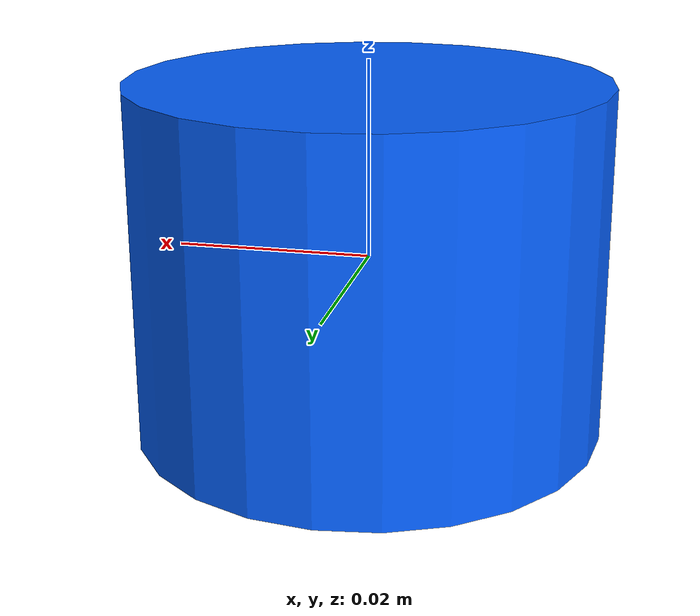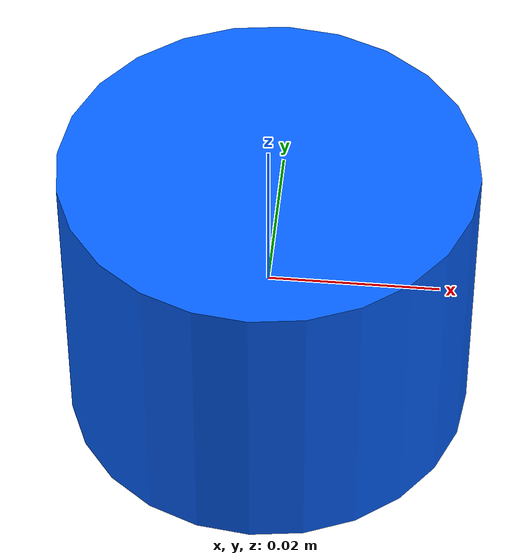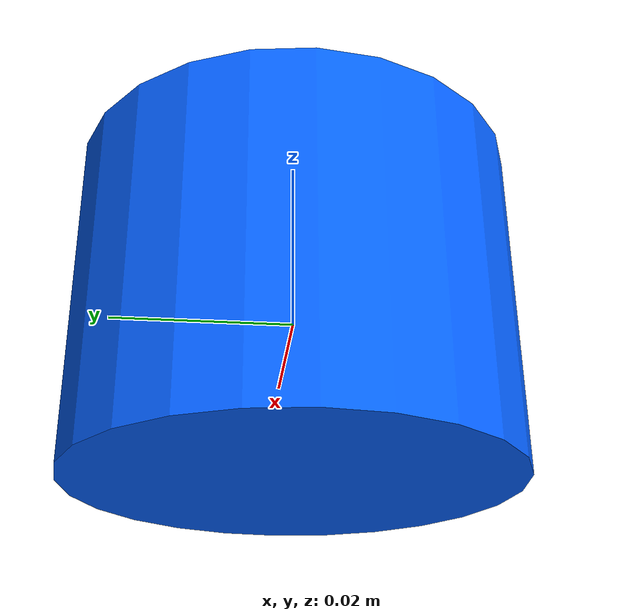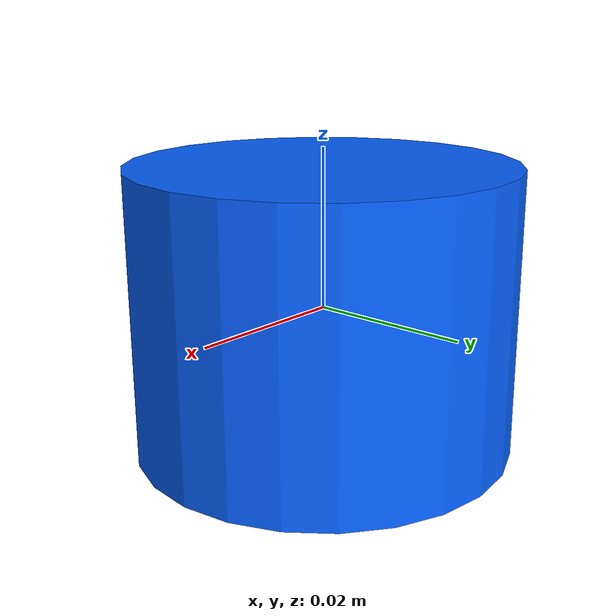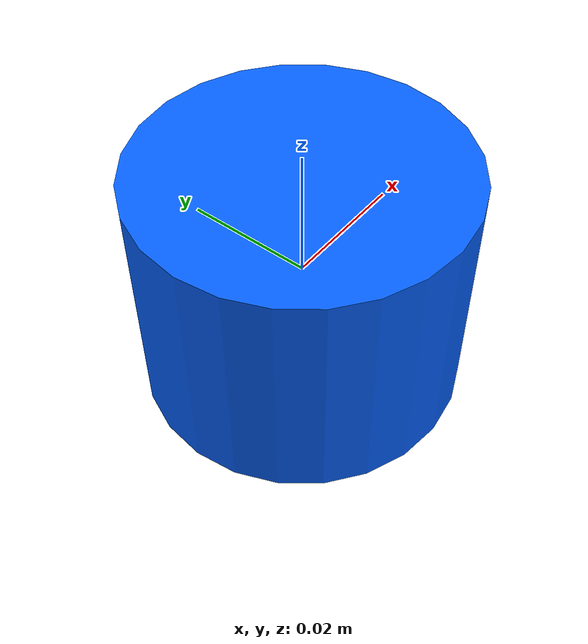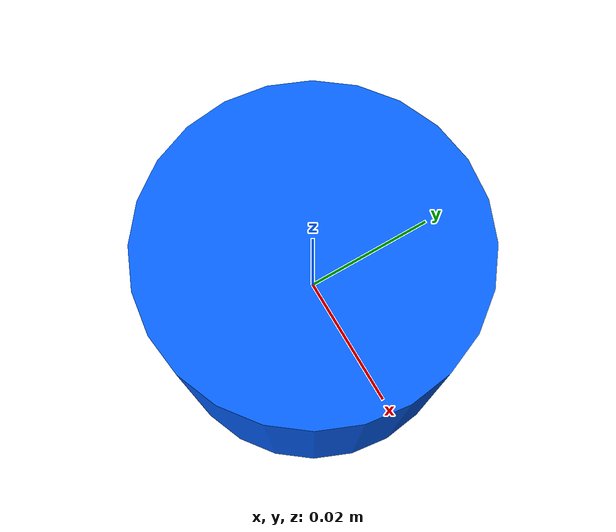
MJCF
<mujoco model="momentum_relay">
  <!-- L3-A4 object B: a graspable puck that relays A's impulse to C. -->
  <asset>
    <material name="relay_blue" rgba="0.02 0.38 1.00 1.00"
              specular="0.25" shininess="0.20"/>
  </asset>
  <worldbody>
    <body>
      <body name="object">
        <geom name="visual" type="cylinder" size="0.024 0.018"
              group="1" contype="0" conaffinity="0"
              material="relay_blue"/>
        <geom name="collision" type="cylinder" size="0.024 0.018"
              group="0" density="320"
              friction="0.28 0.015 0.002"
              solimp="0.995 0.995 0.001" solref="0.004 1"/>
      </body>
      <site rgba="0 0 0 0" size="0.004" pos="0 0 -0.018" name="bottom_site"/>
      <site rgba="0 0 0 0" size="0.004" pos="0 0 0.018" name="top_site"/>
      <site rgba="0 0 0 0" size="0.004" pos="0.024 0 0" name="horizontal_radius_site"/>
    </body>
  </worldbody>
</mujoco>
